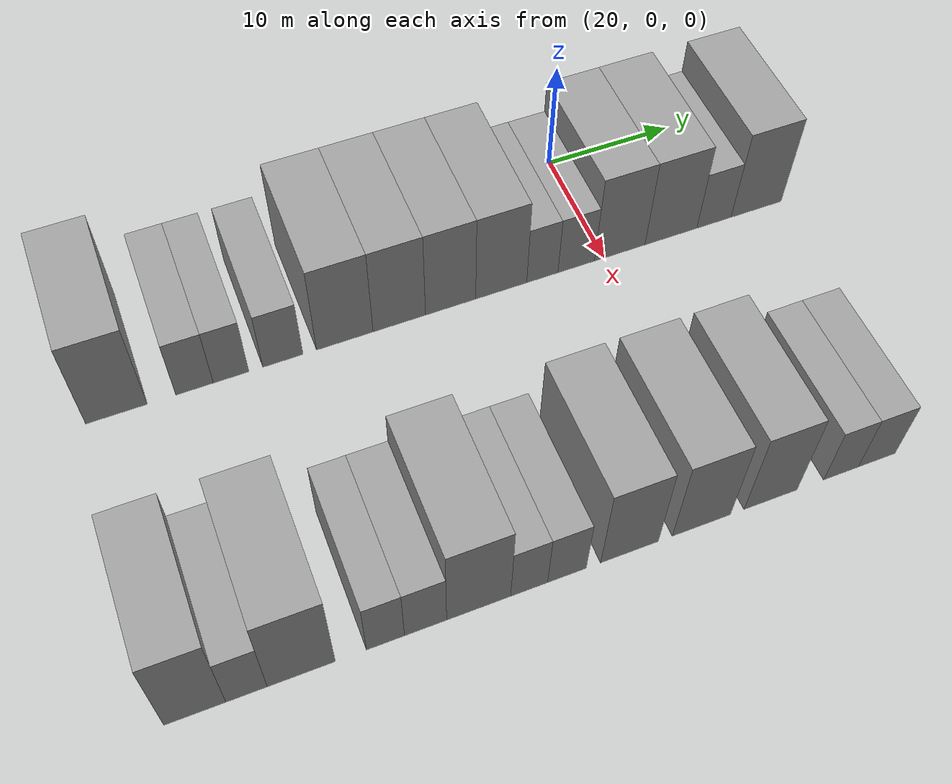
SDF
<sdf version="1.6">
 <world name="default">
  <model name="building_39">
   <static>1</static>
   <pose>25.0000 -36.5479 0 0.000000 0.000000 0.000000</pose>
   <link name="link">
    <pose>0 0 4.50 0 0 0</pose>
    <collision name="collision"><geometry><box><size>10.0000 4.2784 9.0000</size></box></geometry></collision>
    <visual name="visual">
     <cast_shadows>0</cast_shadows>
     <geometry><box><size>10.0000 4.2784 9.0000</size></box></geometry>
     <material>
      <script>
       <uri>model://grey_wall/materials/scripts</uri>
       <uri>model://grey_wall/materials/textures</uri>
       <name>vrc/grey_wall</name>
      </script>
     </material>
    </visual>
   </link>
  </model>
  <model name="building_40">
   <static>1</static>
   <pose>25.0000 -31.0779 0 0.000000 0.000000 0.000000</pose>
   <link name="link">
    <pose>0 0 3.00 0 0 0</pose>
    <collision name="collision"><geometry><box><size>10.0000 2.6616 6.0000</size></box></geometry></collision>
    <visual name="visual">
     <cast_shadows>0</cast_shadows>
     <geometry><box><size>10.0000 2.6616 6.0000</size></box></geometry>
     <material>
      <script>
       <uri>model://grey_wall/materials/scripts</uri>
       <uri>model://grey_wall/materials/textures</uri>
       <name>vrc/grey_wall</name>
      </script>
     </material>
    </visual>
   </link>
  </model>
  <model name="building_41">
   <static>1</static>
   <pose>25.0000 -28.4671 0 0.000000 0.000000 0.000000</pose>
   <link name="link">
    <pose>0 0 3.00 0 0 0</pose>
    <collision name="collision"><geometry><box><size>10.0000 2.5600 6.0000</size></box></geometry></collision>
    <visual name="visual">
     <cast_shadows>0</cast_shadows>
     <geometry><box><size>10.0000 2.5600 6.0000</size></box></geometry>
     <material>
      <script>
       <uri>model://grey_wall/materials/scripts</uri>
       <uri>model://grey_wall/materials/textures</uri>
       <name>vrc/grey_wall</name>
      </script>
     </material>
    </visual>
   </link>
  </model>
  <model name="building_42">
   <static>1</static>
   <pose>25.0000 -24.7197 0 0.000000 0.000000 0.000000</pose>
   <link name="link">
    <pose>0 0 3.00 0 0 0</pose>
    <collision name="collision"><geometry><box><size>10.0000 2.9350 6.0000</size></box></geometry></collision>
    <visual name="visual">
     <cast_shadows>0</cast_shadows>
     <geometry><box><size>10.0000 2.9350 6.0000</size></box></geometry>
     <material>
      <script>
       <uri>model://grey_wall/materials/scripts</uri>
       <uri>model://grey_wall/materials/textures</uri>
       <name>vrc/grey_wall</name>
      </script>
     </material>
    </visual>
   </link>
  </model>
  <model name="building_43">
   <static>1</static>
   <pose>25.0000 -20.1463 0 0.000000 0.000000 0.000000</pose>
   <link name="link">
    <pose>0 0 4.50 0 0 0</pose>
    <collision name="collision"><geometry><box><size>10.0000 4.2118 9.0000</size></box></geometry></collision>
    <visual name="visual">
     <cast_shadows>0</cast_shadows>
     <geometry><box><size>10.0000 4.2118 9.0000</size></box></geometry>
     <material>
      <script>
       <uri>model://grey_wall/materials/scripts</uri>
       <uri>model://grey_wall/materials/textures</uri>
       <name>vrc/grey_wall</name>
      </script>
     </material>
    </visual>
   </link>
  </model>
  <model name="building_44">
   <static>1</static>
   <pose>25.0000 -16.0506 0 0.000000 0.000000 0.000000</pose>
   <link name="link">
    <pose>0 0 4.50 0 0 0</pose>
    <collision name="collision"><geometry><box><size>10.0000 3.9796 9.0000</size></box></geometry></collision>
    <visual name="visual">
     <cast_shadows>0</cast_shadows>
     <geometry><box><size>10.0000 3.9796 9.0000</size></box></geometry>
     <material>
      <script>
       <uri>model://grey_wall/materials/scripts</uri>
       <uri>model://grey_wall/materials/textures</uri>
       <name>vrc/grey_wall</name>
      </script>
     </material>
    </visual>
   </link>
  </model>
  <model name="building_45">
   <static>1</static>
   <pose>25.0000 -12.1301 0 0.000000 0.000000 0.000000</pose>
   <link name="link">
    <pose>0 0 4.50 0 0 0</pose>
    <collision name="collision"><geometry><box><size>10.0000 3.8613 9.0000</size></box></geometry></collision>
    <visual name="visual">
     <cast_shadows>0</cast_shadows>
     <geometry><box><size>10.0000 3.8613 9.0000</size></box></geometry>
     <material>
      <script>
       <uri>model://grey_wall/materials/scripts</uri>
       <uri>model://grey_wall/materials/textures</uri>
       <name>vrc/grey_wall</name>
      </script>
     </material>
    </visual>
   </link>
  </model>
  <model name="building_46">
   <static>1</static>
   <pose>25.0000 -8.1956 0 0.000000 0.000000 0.000000</pose>
   <link name="link">
    <pose>0 0 4.50 0 0 0</pose>
    <collision name="collision"><geometry><box><size>10.0000 4.0076 9.0000</size></box></geometry></collision>
    <visual name="visual">
     <cast_shadows>0</cast_shadows>
     <geometry><box><size>10.0000 4.0076 9.0000</size></box></geometry>
     <material>
      <script>
       <uri>model://grey_wall/materials/scripts</uri>
       <uri>model://grey_wall/materials/textures</uri>
       <name>vrc/grey_wall</name>
      </script>
     </material>
    </visual>
   </link>
  </model>
  <model name="building_47">
   <static>1</static>
   <pose>25.0000 -4.9509 0 0.000000 0.000000 0.000000</pose>
   <link name="link">
    <pose>0 0 3.00 0 0 0</pose>
    <collision name="collision"><geometry><box><size>10.0000 2.4819 6.0000</size></box></geometry></collision>
    <visual name="visual">
     <cast_shadows>0</cast_shadows>
     <geometry><box><size>10.0000 2.4819 6.0000</size></box></geometry>
     <material>
      <script>
       <uri>model://grey_wall/materials/scripts</uri>
       <uri>model://grey_wall/materials/textures</uri>
       <name>vrc/grey_wall</name>
      </script>
     </material>
    </visual>
   </link>
  </model>
  <model name="building_48">
   <static>1</static>
   <pose>25.0000 -2.2434 0 0.000000 0.000000 0.000000</pose>
   <link name="link">
    <pose>0 0 3.00 0 0 0</pose>
    <collision name="collision"><geometry><box><size>10.0000 2.9330 6.0000</size></box></geometry></collision>
    <visual name="visual">
     <cast_shadows>0</cast_shadows>
     <geometry><box><size>10.0000 2.9330 6.0000</size></box></geometry>
     <material>
      <script>
       <uri>model://grey_wall/materials/scripts</uri>
       <uri>model://grey_wall/materials/textures</uri>
       <name>vrc/grey_wall</name>
      </script>
     </material>
    </visual>
   </link>
  </model>
  <model name="building_49">
   <static>1</static>
   <pose>25.0000 1.2907 0 0.000000 0.000000 0.000000</pose>
   <link name="link">
    <pose>0 0 4.50 0 0 0</pose>
    <collision name="collision"><geometry><box><size>10.0000 4.1353 9.0000</size></box></geometry></collision>
    <visual name="visual">
     <cast_shadows>0</cast_shadows>
     <geometry><box><size>10.0000 4.1353 9.0000</size></box></geometry>
     <material>
      <script>
       <uri>model://grey_wall/materials/scripts</uri>
       <uri>model://grey_wall/materials/textures</uri>
       <name>vrc/grey_wall</name>
      </script>
     </material>
    </visual>
   </link>
  </model>
  <model name="building_50">
   <static>1</static>
   <pose>25.0000 5.5129 0 0.000000 0.000000 0.000000</pose>
   <link name="link">
    <pose>0 0 4.50 0 0 0</pose>
    <collision name="collision"><geometry><box><size>10.0000 4.3091 9.0000</size></box></geometry></collision>
    <visual name="visual">
     <cast_shadows>0</cast_shadows>
     <geometry><box><size>10.0000 4.3091 9.0000</size></box></geometry>
     <material>
      <script>
       <uri>model://grey_wall/materials/scripts</uri>
       <uri>model://grey_wall/materials/textures</uri>
       <name>vrc/grey_wall</name>
      </script>
     </material>
    </visual>
   </link>
  </model>
  <model name="building_51">
   <static>1</static>
   <pose>25.0000 9.1079 0 0.000000 0.000000 0.000000</pose>
   <link name="link">
    <pose>0 0 3.00 0 0 0</pose>
    <collision name="collision"><geometry><box><size>10.0000 2.8809 6.0000</size></box></geometry></collision>
    <visual name="visual">
     <cast_shadows>0</cast_shadows>
     <geometry><box><size>10.0000 2.8809 6.0000</size></box></geometry>
     <material>
      <script>
       <uri>model://grey_wall/materials/scripts</uri>
       <uri>model://grey_wall/materials/textures</uri>
       <name>vrc/grey_wall</name>
      </script>
     </material>
    </visual>
   </link>
  </model>
  <model name="building_52">
   <static>1</static>
   <pose>25.0000 12.6983 0 0.000000 0.000000 0.000000</pose>
   <link name="link">
    <pose>0 0 4.50 0 0 0</pose>
    <collision name="collision"><geometry><box><size>10.0000 4.3001 9.0000</size></box></geometry></collision>
    <visual name="visual">
     <cast_shadows>0</cast_shadows>
     <geometry><box><size>10.0000 4.3001 9.0000</size></box></geometry>
     <material>
      <script>
       <uri>model://grey_wall/materials/scripts</uri>
       <uri>model://grey_wall/materials/textures</uri>
       <name>vrc/grey_wall</name>
      </script>
     </material>
    </visual>
   </link>
  </model>
  <model name="building_145">
   <static>1</static>
   <pose>47.0000 -36.9353 0 0.000000 0.000000 0.000000</pose>
   <link name="link">
    <pose>0 0 4.50 0 0 0</pose>
    <collision name="collision"><geometry><box><size>10.0000 3.7909 9.0000</size></box></geometry></collision>
    <visual name="visual">
     <cast_shadows>0</cast_shadows>
     <geometry><box><size>10.0000 3.7909 9.0000</size></box></geometry>
     <material>
      <script>
       <uri>model://grey_wall/materials/scripts</uri>
       <uri>model://grey_wall/materials/textures</uri>
       <name>vrc/grey_wall</name>
      </script>
     </material>
    </visual>
   </link>
  </model>
  <model name="building_146">
   <static>1</static>
   <pose>47.0000 -33.7559 0 0.000000 0.000000 0.000000</pose>
   <link name="link">
    <pose>0 0 3.00 0 0 0</pose>
    <collision name="collision"><geometry><box><size>10.0000 2.5678 6.0000</size></box></geometry></collision>
    <visual name="visual">
     <cast_shadows>0</cast_shadows>
     <geometry><box><size>10.0000 2.5678 6.0000</size></box></geometry>
     <material>
      <script>
       <uri>model://grey_wall/materials/scripts</uri>
       <uri>model://grey_wall/materials/textures</uri>
       <name>vrc/grey_wall</name>
      </script>
     </material>
    </visual>
   </link>
  </model>
  <model name="building_147">
   <static>1</static>
   <pose>47.0000 -30.3188 0 0.000000 0.000000 0.000000</pose>
   <link name="link">
    <pose>0 0 4.50 0 0 0</pose>
    <collision name="collision"><geometry><box><size>10.0000 4.3065 9.0000</size></box></geometry></collision>
    <visual name="visual">
     <cast_shadows>0</cast_shadows>
     <geometry><box><size>10.0000 4.3065 9.0000</size></box></geometry>
     <material>
      <script>
       <uri>model://grey_wall/materials/scripts</uri>
       <uri>model://grey_wall/materials/textures</uri>
       <name>vrc/grey_wall</name>
      </script>
     </material>
    </visual>
   </link>
  </model>
  <model name="building_148">
   <static>1</static>
   <pose>47.0000 -24.9301 0 0.000000 0.000000 0.000000</pose>
   <link name="link">
    <pose>0 0 3.00 0 0 0</pose>
    <collision name="collision"><geometry><box><size>10.0000 2.4707 6.0000</size></box></geometry></collision>
    <visual name="visual">
     <cast_shadows>0</cast_shadows>
     <geometry><box><size>10.0000 2.4707 6.0000</size></box></geometry>
     <material>
      <script>
       <uri>model://grey_wall/materials/scripts</uri>
       <uri>model://grey_wall/materials/textures</uri>
       <name>vrc/grey_wall</name>
      </script>
     </material>
    </visual>
   </link>
  </model>
  <model name="building_149">
   <static>1</static>
   <pose>47.0000 -22.3073 0 0.000000 0.000000 0.000000</pose>
   <link name="link">
    <pose>0 0 3.00 0 0 0</pose>
    <collision name="collision"><geometry><box><size>10.0000 2.7750 6.0000</size></box></geometry></collision>
    <visual name="visual">
     <cast_shadows>0</cast_shadows>
     <geometry><box><size>10.0000 2.7750 6.0000</size></box></geometry>
     <material>
      <script>
       <uri>model://grey_wall/materials/scripts</uri>
       <uri>model://grey_wall/materials/textures</uri>
       <name>vrc/grey_wall</name>
      </script>
     </material>
    </visual>
   </link>
  </model>
  <model name="building_150">
   <static>1</static>
   <pose>47.0000 -18.7735 0 0.000000 0.000000 0.000000</pose>
   <link name="link">
    <pose>0 0 4.50 0 0 0</pose>
    <collision name="collision"><geometry><box><size>10.0000 4.2926 9.0000</size></box></geometry></collision>
    <visual name="visual">
     <cast_shadows>0</cast_shadows>
     <geometry><box><size>10.0000 4.2926 9.0000</size></box></geometry>
     <material>
      <script>
       <uri>model://grey_wall/materials/scripts</uri>
       <uri>model://grey_wall/materials/textures</uri>
       <name>vrc/grey_wall</name>
      </script>
     </material>
    </visual>
   </link>
  </model>
  <model name="building_151">
   <static>1</static>
   <pose>47.0000 -15.3705 0 0.000000 0.000000 0.000000</pose>
   <link name="link">
    <pose>0 0 3.00 0 0 0</pose>
    <collision name="collision"><geometry><box><size>10.0000 2.5134 6.0000</size></box></geometry></collision>
    <visual name="visual">
     <cast_shadows>0</cast_shadows>
     <geometry><box><size>10.0000 2.5134 6.0000</size></box></geometry>
     <material>
      <script>
       <uri>model://grey_wall/materials/scripts</uri>
       <uri>model://grey_wall/materials/textures</uri>
       <name>vrc/grey_wall</name>
      </script>
     </material>
    </visual>
   </link>
  </model>
  <model name="building_152">
   <static>1</static>
   <pose>47.0000 -12.7776 0 0.000000 0.000000 0.000000</pose>
   <link name="link">
    <pose>0 0 3.00 0 0 0</pose>
    <collision name="collision"><geometry><box><size>10.0000 2.6724 6.0000</size></box></geometry></collision>
    <visual name="visual">
     <cast_shadows>0</cast_shadows>
     <geometry><box><size>10.0000 2.6724 6.0000</size></box></geometry>
     <material>
      <script>
       <uri>model://grey_wall/materials/scripts</uri>
       <uri>model://grey_wall/materials/textures</uri>
       <name>vrc/grey_wall</name>
      </script>
     </material>
    </visual>
   </link>
  </model>
  <model name="building_153">
   <static>1</static>
   <pose>47.0000 -8.4035 0 0.000000 0.000000 0.000000</pose>
   <link name="link">
    <pose>0 0 4.50 0 0 0</pose>
    <collision name="collision"><geometry><box><size>10.0000 4.0758 9.0000</size></box></geometry></collision>
    <visual name="visual">
     <cast_shadows>0</cast_shadows>
     <geometry><box><size>10.0000 4.0758 9.0000</size></box></geometry>
     <material>
      <script>
       <uri>model://grey_wall/materials/scripts</uri>
       <uri>model://grey_wall/materials/textures</uri>
       <name>vrc/grey_wall</name>
      </script>
     </material>
    </visual>
   </link>
  </model>
  <model name="building_154">
   <static>1</static>
   <pose>47.0000 -3.2656 0 0.000000 0.000000 0.000000</pose>
   <link name="link">
    <pose>0 0 4.50 0 0 0</pose>
    <collision name="collision"><geometry><box><size>10.0000 4.1999 9.0000</size></box></geometry></collision>
    <visual name="visual">
     <cast_shadows>0</cast_shadows>
     <geometry><box><size>10.0000 4.1999 9.0000</size></box></geometry>
     <material>
      <script>
       <uri>model://grey_wall/materials/scripts</uri>
       <uri>model://grey_wall/materials/textures</uri>
       <name>vrc/grey_wall</name>
      </script>
     </material>
    </visual>
   </link>
  </model>
  <model name="building_155">
   <static>1</static>
   <pose>47.0000 1.7955 0 0.000000 0.000000 0.000000</pose>
   <link name="link">
    <pose>0 0 4.50 0 0 0</pose>
    <collision name="collision"><geometry><box><size>10.0000 3.9222 9.0000</size></box></geometry></collision>
    <visual name="visual">
     <cast_shadows>0</cast_shadows>
     <geometry><box><size>10.0000 3.9222 9.0000</size></box></geometry>
     <material>
      <script>
       <uri>model://grey_wall/materials/scripts</uri>
       <uri>model://grey_wall/materials/textures</uri>
       <name>vrc/grey_wall</name>
      </script>
     </material>
    </visual>
   </link>
  </model>
  <model name="building_156">
   <static>1</static>
   <pose>47.0000 7.0728 0 0.000000 0.000000 0.000000</pose>
   <link name="link">
    <pose>0 0 3.00 0 0 0</pose>
    <collision name="collision"><geometry><box><size>10.0000 2.6325 6.0000</size></box></geometry></collision>
    <visual name="visual">
     <cast_shadows>0</cast_shadows>
     <geometry><box><size>10.0000 2.6325 6.0000</size></box></geometry>
     <material>
      <script>
       <uri>model://grey_wall/materials/scripts</uri>
       <uri>model://grey_wall/materials/textures</uri>
       <name>vrc/grey_wall</name>
      </script>
     </material>
    </visual>
   </link>
  </model>
  <model name="building_157">
   <static>1</static>
   <pose>47.0000 9.8041 0 0.000000 0.000000 0.000000</pose>
   <link name="link">
    <pose>0 0 3.00 0 0 0</pose>
    <collision name="collision"><geometry><box><size>10.0000 2.8301 6.0000</size></box></geometry></collision>
    <visual name="visual">
     <cast_shadows>0</cast_shadows>
     <geometry><box><size>10.0000 2.8301 6.0000</size></box></geometry>
     <material>
      <script>
       <uri>model://grey_wall/materials/scripts</uri>
       <uri>model://grey_wall/materials/textures</uri>
       <name>vrc/grey_wall</name>
      </script>
     </material>
    </visual>
   </link>
  </model>
 </world>
</sdf>
